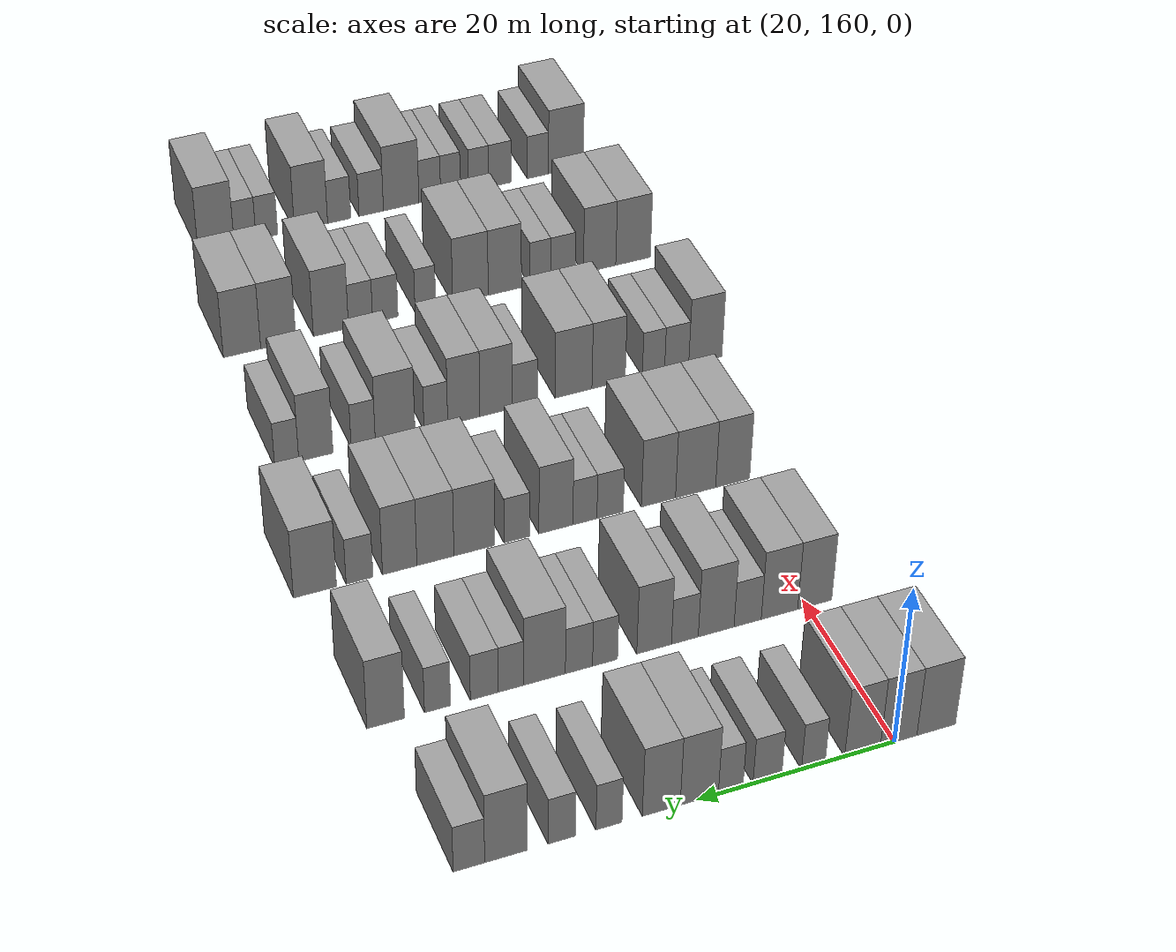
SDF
<sdf version="1.6">
 <world name="default">
  <model name="building_123">
   <static>1</static>
   <pose>25.0000 155.6396 0 0.000000 0.000000 0.000000</pose>
   <link name="link">
    <pose>0 0 4.50 0 0 0</pose>
    <collision name="collision"><geometry><box><size>10.0000 4.0307 9.0000</size></box></geometry></collision>
    <visual name="visual">
     <cast_shadows>0</cast_shadows>
     <geometry><box><size>10.0000 4.0307 9.0000</size></box></geometry>
     <material>
      <script>
       <uri>model://grey_wall/materials/scripts</uri>
       <uri>model://grey_wall/materials/textures</uri>
       <name>vrc/grey_wall</name>
      </script>
     </material>
    </visual>
   </link>
  </model>
  <model name="building_124">
   <static>1</static>
   <pose>25.0000 159.5429 0 0.000000 0.000000 0.000000</pose>
   <link name="link">
    <pose>0 0 4.50 0 0 0</pose>
    <collision name="collision"><geometry><box><size>10.0000 3.7759 9.0000</size></box></geometry></collision>
    <visual name="visual">
     <cast_shadows>0</cast_shadows>
     <geometry><box><size>10.0000 3.7759 9.0000</size></box></geometry>
     <material>
      <script>
       <uri>model://grey_wall/materials/scripts</uri>
       <uri>model://grey_wall/materials/textures</uri>
       <name>vrc/grey_wall</name>
      </script>
     </material>
    </visual>
   </link>
  </model>
  <model name="building_125">
   <static>1</static>
   <pose>25.0000 163.2745 0 0.000000 0.000000 0.000000</pose>
   <link name="link">
    <pose>0 0 4.50 0 0 0</pose>
    <collision name="collision"><geometry><box><size>10.0000 3.6872 9.0000</size></box></geometry></collision>
    <visual name="visual">
     <cast_shadows>0</cast_shadows>
     <geometry><box><size>10.0000 3.6872 9.0000</size></box></geometry>
     <material>
      <script>
       <uri>model://grey_wall/materials/scripts</uri>
       <uri>model://grey_wall/materials/textures</uri>
       <name>vrc/grey_wall</name>
      </script>
     </material>
    </visual>
   </link>
  </model>
  <model name="building_126">
   <static>1</static>
   <pose>25.0000 168.3255 0 0.000000 0.000000 0.000000</pose>
   <link name="link">
    <pose>0 0 3.00 0 0 0</pose>
    <collision name="collision"><geometry><box><size>10.0000 2.4147 6.0000</size></box></geometry></collision>
    <visual name="visual">
     <cast_shadows>0</cast_shadows>
     <geometry><box><size>10.0000 2.4147 6.0000</size></box></geometry>
     <material>
      <script>
       <uri>model://grey_wall/materials/scripts</uri>
       <uri>model://grey_wall/materials/textures</uri>
       <name>vrc/grey_wall</name>
      </script>
     </material>
    </visual>
   </link>
  </model>
  <model name="building_127">
   <static>1</static>
   <pose>25.0000 172.9852 0 0.000000 0.000000 0.000000</pose>
   <link name="link">
    <pose>0 0 3.00 0 0 0</pose>
    <collision name="collision"><geometry><box><size>10.0000 2.9047 6.0000</size></box></geometry></collision>
    <visual name="visual">
     <cast_shadows>0</cast_shadows>
     <geometry><box><size>10.0000 2.9047 6.0000</size></box></geometry>
     <material>
      <script>
       <uri>model://grey_wall/materials/scripts</uri>
       <uri>model://grey_wall/materials/textures</uri>
       <name>vrc/grey_wall</name>
      </script>
     </material>
    </visual>
   </link>
  </model>
  <model name="building_128">
   <static>1</static>
   <pose>25.0000 176.6720 0 0.000000 0.000000 0.000000</pose>
   <link name="link">
    <pose>0 0 3.00 0 0 0</pose>
    <collision name="collision"><geometry><box><size>10.0000 2.4690 6.0000</size></box></geometry></collision>
    <visual name="visual">
     <cast_shadows>0</cast_shadows>
     <geometry><box><size>10.0000 2.4690 6.0000</size></box></geometry>
     <material>
      <script>
       <uri>model://grey_wall/materials/scripts</uri>
       <uri>model://grey_wall/materials/textures</uri>
       <name>vrc/grey_wall</name>
      </script>
     </material>
    </visual>
   </link>
  </model>
  <model name="building_129">
   <static>1</static>
   <pose>25.0000 179.7991 0 0.000000 0.000000 0.000000</pose>
   <link name="link">
    <pose>0 0 4.50 0 0 0</pose>
    <collision name="collision"><geometry><box><size>10.0000 3.7854 9.0000</size></box></geometry></collision>
    <visual name="visual">
     <cast_shadows>0</cast_shadows>
     <geometry><box><size>10.0000 3.7854 9.0000</size></box></geometry>
     <material>
      <script>
       <uri>model://grey_wall/materials/scripts</uri>
       <uri>model://grey_wall/materials/textures</uri>
       <name>vrc/grey_wall</name>
      </script>
     </material>
    </visual>
   </link>
  </model>
  <model name="building_130">
   <static>1</static>
   <pose>25.0000 183.5631 0 0.000000 0.000000 0.000000</pose>
   <link name="link">
    <pose>0 0 4.50 0 0 0</pose>
    <collision name="collision"><geometry><box><size>10.0000 3.7427 9.0000</size></box></geometry></collision>
    <visual name="visual">
     <cast_shadows>0</cast_shadows>
     <geometry><box><size>10.0000 3.7427 9.0000</size></box></geometry>
     <material>
      <script>
       <uri>model://grey_wall/materials/scripts</uri>
       <uri>model://grey_wall/materials/textures</uri>
       <name>vrc/grey_wall</name>
      </script>
     </material>
    </visual>
   </link>
  </model>
  <model name="building_131">
   <static>1</static>
   <pose>25.0000 188.7011 0 0.000000 0.000000 0.000000</pose>
   <link name="link">
    <pose>0 0 3.00 0 0 0</pose>
    <collision name="collision"><geometry><box><size>10.0000 2.5333 6.0000</size></box></geometry></collision>
    <visual name="visual">
     <cast_shadows>0</cast_shadows>
     <geometry><box><size>10.0000 2.5333 6.0000</size></box></geometry>
     <material>
      <script>
       <uri>model://grey_wall/materials/scripts</uri>
       <uri>model://grey_wall/materials/textures</uri>
       <name>vrc/grey_wall</name>
      </script>
     </material>
    </visual>
   </link>
  </model>
  <model name="building_132">
   <static>1</static>
   <pose>25.0000 193.2896 0 0.000000 0.000000 0.000000</pose>
   <link name="link">
    <pose>0 0 3.00 0 0 0</pose>
    <collision name="collision"><geometry><box><size>10.0000 2.6437 6.0000</size></box></geometry></collision>
    <visual name="visual">
     <cast_shadows>0</cast_shadows>
     <geometry><box><size>10.0000 2.6437 6.0000</size></box></geometry>
     <material>
      <script>
       <uri>model://grey_wall/materials/scripts</uri>
       <uri>model://grey_wall/materials/textures</uri>
       <name>vrc/grey_wall</name>
      </script>
     </material>
    </visual>
   </link>
  </model>
  <model name="building_133">
   <static>1</static>
   <pose>25.0000 198.6399 0 0.000000 0.000000 0.000000</pose>
   <link name="link">
    <pose>0 0 4.50 0 0 0</pose>
    <collision name="collision"><geometry><box><size>10.0000 4.0569 9.0000</size></box></geometry></collision>
    <visual name="visual">
     <cast_shadows>0</cast_shadows>
     <geometry><box><size>10.0000 4.0569 9.0000</size></box></geometry>
     <material>
      <script>
       <uri>model://grey_wall/materials/scripts</uri>
       <uri>model://grey_wall/materials/textures</uri>
       <name>vrc/grey_wall</name>
      </script>
     </material>
    </visual>
   </link>
  </model>
  <model name="building_134">
   <static>1</static>
   <pose>25.0000 202.1631 0 0.000000 0.000000 0.000000</pose>
   <link name="link">
    <pose>0 0 3.00 0 0 0</pose>
    <collision name="collision"><geometry><box><size>10.0000 2.9894 6.0000</size></box></geometry></collision>
    <visual name="visual">
     <cast_shadows>0</cast_shadows>
     <geometry><box><size>10.0000 2.9894 6.0000</size></box></geometry>
     <material>
      <script>
       <uri>model://grey_wall/materials/scripts</uri>
       <uri>model://grey_wall/materials/textures</uri>
       <name>vrc/grey_wall</name>
      </script>
     </material>
    </visual>
   </link>
  </model>
  <model name="building_292">
   <static>1</static>
   <pose>44.0000 159.2048 0 0.000000 0.000000 0.000000</pose>
   <link name="link">
    <pose>0 0 4.50 0 0 0</pose>
    <collision name="collision"><geometry><box><size>10.0000 3.6809 9.0000</size></box></geometry></collision>
    <visual name="visual">
     <cast_shadows>0</cast_shadows>
     <geometry><box><size>10.0000 3.6809 9.0000</size></box></geometry>
     <material>
      <script>
       <uri>model://grey_wall/materials/scripts</uri>
       <uri>model://grey_wall/materials/textures</uri>
       <name>vrc/grey_wall</name>
      </script>
     </material>
    </visual>
   </link>
  </model>
  <model name="building_293">
   <static>1</static>
   <pose>44.0000 163.0004 0 0.000000 0.000000 0.000000</pose>
   <link name="link">
    <pose>0 0 4.50 0 0 0</pose>
    <collision name="collision"><geometry><box><size>10.0000 3.9104 9.0000</size></box></geometry></collision>
    <visual name="visual">
     <cast_shadows>0</cast_shadows>
     <geometry><box><size>10.0000 3.9104 9.0000</size></box></geometry>
     <material>
      <script>
       <uri>model://grey_wall/materials/scripts</uri>
       <uri>model://grey_wall/materials/textures</uri>
       <name>vrc/grey_wall</name>
      </script>
     </material>
    </visual>
   </link>
  </model>
  <model name="building_294">
   <static>1</static>
   <pose>44.0000 166.4081 0 0.000000 0.000000 0.000000</pose>
   <link name="link">
    <pose>0 0 3.00 0 0 0</pose>
    <collision name="collision"><geometry><box><size>10.0000 2.9050 6.0000</size></box></geometry></collision>
    <visual name="visual">
     <cast_shadows>0</cast_shadows>
     <geometry><box><size>10.0000 2.9050 6.0000</size></box></geometry>
     <material>
      <script>
       <uri>model://grey_wall/materials/scripts</uri>
       <uri>model://grey_wall/materials/textures</uri>
       <name>vrc/grey_wall</name>
      </script>
     </material>
    </visual>
   </link>
  </model>
  <model name="building_295">
   <static>1</static>
   <pose>44.0000 169.7570 0 0.000000 0.000000 0.000000</pose>
   <link name="link">
    <pose>0 0 4.50 0 0 0</pose>
    <collision name="collision"><geometry><box><size>10.0000 3.7927 9.0000</size></box></geometry></collision>
    <visual name="visual">
     <cast_shadows>0</cast_shadows>
     <geometry><box><size>10.0000 3.7927 9.0000</size></box></geometry>
     <material>
      <script>
       <uri>model://grey_wall/materials/scripts</uri>
       <uri>model://grey_wall/materials/textures</uri>
       <name>vrc/grey_wall</name>
      </script>
     </material>
    </visual>
   </link>
  </model>
  <model name="building_296">
   <static>1</static>
   <pose>44.0000 173.0677 0 0.000000 0.000000 0.000000</pose>
   <link name="link">
    <pose>0 0 3.00 0 0 0</pose>
    <collision name="collision"><geometry><box><size>10.0000 2.8288 6.0000</size></box></geometry></collision>
    <visual name="visual">
     <cast_shadows>0</cast_shadows>
     <geometry><box><size>10.0000 2.8288 6.0000</size></box></geometry>
     <material>
      <script>
       <uri>model://grey_wall/materials/scripts</uri>
       <uri>model://grey_wall/materials/textures</uri>
       <name>vrc/grey_wall</name>
      </script>
     </material>
    </visual>
   </link>
  </model>
  <model name="building_297">
   <static>1</static>
   <pose>44.0000 176.2962 0 0.000000 0.000000 0.000000</pose>
   <link name="link">
    <pose>0 0 4.50 0 0 0</pose>
    <collision name="collision"><geometry><box><size>10.0000 3.6283 9.0000</size></box></geometry></collision>
    <visual name="visual">
     <cast_shadows>0</cast_shadows>
     <geometry><box><size>10.0000 3.6283 9.0000</size></box></geometry>
     <material>
      <script>
       <uri>model://grey_wall/materials/scripts</uri>
       <uri>model://grey_wall/materials/textures</uri>
       <name>vrc/grey_wall</name>
      </script>
     </material>
    </visual>
   </link>
  </model>
  <model name="building_298">
   <static>1</static>
   <pose>44.0000 181.4017 0 0.000000 0.000000 0.000000</pose>
   <link name="link">
    <pose>0 0 3.00 0 0 0</pose>
    <collision name="collision"><geometry><box><size>10.0000 2.5827 6.0000</size></box></geometry></collision>
    <visual name="visual">
     <cast_shadows>0</cast_shadows>
     <geometry><box><size>10.0000 2.5827 6.0000</size></box></geometry>
     <material>
      <script>
       <uri>model://grey_wall/materials/scripts</uri>
       <uri>model://grey_wall/materials/textures</uri>
       <name>vrc/grey_wall</name>
      </script>
     </material>
    </visual>
   </link>
  </model>
  <model name="building_299">
   <static>1</static>
   <pose>44.0000 184.0940 0 0.000000 0.000000 0.000000</pose>
   <link name="link">
    <pose>0 0 3.00 0 0 0</pose>
    <collision name="collision"><geometry><box><size>10.0000 2.8018 6.0000</size></box></geometry></collision>
    <visual name="visual">
     <cast_shadows>0</cast_shadows>
     <geometry><box><size>10.0000 2.8018 6.0000</size></box></geometry>
     <material>
      <script>
       <uri>model://grey_wall/materials/scripts</uri>
       <uri>model://grey_wall/materials/textures</uri>
       <name>vrc/grey_wall</name>
      </script>
     </material>
    </visual>
   </link>
  </model>
  <model name="building_300">
   <static>1</static>
   <pose>44.0000 187.6282 0 0.000000 0.000000 0.000000</pose>
   <link name="link">
    <pose>0 0 4.50 0 0 0</pose>
    <collision name="collision"><geometry><box><size>10.0000 4.2666 9.0000</size></box></geometry></collision>
    <visual name="visual">
     <cast_shadows>0</cast_shadows>
     <geometry><box><size>10.0000 4.2666 9.0000</size></box></geometry>
     <material>
      <script>
       <uri>model://grey_wall/materials/scripts</uri>
       <uri>model://grey_wall/materials/textures</uri>
       <name>vrc/grey_wall</name>
      </script>
     </material>
    </visual>
   </link>
  </model>
  <model name="building_301">
   <static>1</static>
   <pose>44.0000 191.0411 0 0.000000 0.000000 0.000000</pose>
   <link name="link">
    <pose>0 0 3.00 0 0 0</pose>
    <collision name="collision"><geometry><box><size>10.0000 2.5593 6.0000</size></box></geometry></collision>
    <visual name="visual">
     <cast_shadows>0</cast_shadows>
     <geometry><box><size>10.0000 2.5593 6.0000</size></box></geometry>
     <material>
      <script>
       <uri>model://grey_wall/materials/scripts</uri>
       <uri>model://grey_wall/materials/textures</uri>
       <name>vrc/grey_wall</name>
      </script>
     </material>
    </visual>
   </link>
  </model>
  <model name="building_302">
   <static>1</static>
   <pose>44.0000 193.7359 0 0.000000 0.000000 0.000000</pose>
   <link name="link">
    <pose>0 0 3.00 0 0 0</pose>
    <collision name="collision"><geometry><box><size>10.0000 2.8303 6.0000</size></box></geometry></collision>
    <visual name="visual">
     <cast_shadows>0</cast_shadows>
     <geometry><box><size>10.0000 2.8303 6.0000</size></box></geometry>
     <material>
      <script>
       <uri>model://grey_wall/materials/scripts</uri>
       <uri>model://grey_wall/materials/textures</uri>
       <name>vrc/grey_wall</name>
      </script>
     </material>
    </visual>
   </link>
  </model>
  <model name="building_303">
   <static>1</static>
   <pose>44.0000 198.4488 0 0.000000 0.000000 0.000000</pose>
   <link name="link">
    <pose>0 0 3.00 0 0 0</pose>
    <collision name="collision"><geometry><box><size>10.0000 2.5955 6.0000</size></box></geometry></collision>
    <visual name="visual">
     <cast_shadows>0</cast_shadows>
     <geometry><box><size>10.0000 2.5955 6.0000</size></box></geometry>
     <material>
      <script>
       <uri>model://grey_wall/materials/scripts</uri>
       <uri>model://grey_wall/materials/textures</uri>
       <name>vrc/grey_wall</name>
      </script>
     </material>
    </visual>
   </link>
  </model>
  <model name="building_304">
   <static>1</static>
   <pose>44.0000 203.6031 0 0.000000 0.000000 0.000000</pose>
   <link name="link">
    <pose>0 0 4.50 0 0 0</pose>
    <collision name="collision"><geometry><box><size>10.0000 3.7130 9.0000</size></box></geometry></collision>
    <visual name="visual">
     <cast_shadows>0</cast_shadows>
     <geometry><box><size>10.0000 3.7130 9.0000</size></box></geometry>
     <material>
      <script>
       <uri>model://grey_wall/materials/scripts</uri>
       <uri>model://grey_wall/materials/textures</uri>
       <name>vrc/grey_wall</name>
      </script>
     </material>
    </visual>
   </link>
  </model>
  <model name="building_470">
   <static>1</static>
   <pose>63.0000 159.5436 0 0.000000 0.000000 0.000000</pose>
   <link name="link">
    <pose>0 0 4.50 0 0 0</pose>
    <collision name="collision"><geometry><box><size>10.0000 3.8157 9.0000</size></box></geometry></collision>
    <visual name="visual">
     <cast_shadows>0</cast_shadows>
     <geometry><box><size>10.0000 3.8157 9.0000</size></box></geometry>
     <material>
      <script>
       <uri>model://grey_wall/materials/scripts</uri>
       <uri>model://grey_wall/materials/textures</uri>
       <name>vrc/grey_wall</name>
      </script>
     </material>
    </visual>
   </link>
  </model>
  <model name="building_471">
   <static>1</static>
   <pose>63.0000 163.6958 0 0.000000 0.000000 0.000000</pose>
   <link name="link">
    <pose>0 0 4.50 0 0 0</pose>
    <collision name="collision"><geometry><box><size>10.0000 4.4886 9.0000</size></box></geometry></collision>
    <visual name="visual">
     <cast_shadows>0</cast_shadows>
     <geometry><box><size>10.0000 4.4886 9.0000</size></box></geometry>
     <material>
      <script>
       <uri>model://grey_wall/materials/scripts</uri>
       <uri>model://grey_wall/materials/textures</uri>
       <name>vrc/grey_wall</name>
      </script>
     </material>
    </visual>
   </link>
  </model>
  <model name="building_472">
   <static>1</static>
   <pose>63.0000 167.8338 0 0.000000 0.000000 0.000000</pose>
   <link name="link">
    <pose>0 0 4.50 0 0 0</pose>
    <collision name="collision"><geometry><box><size>10.0000 3.7874 9.0000</size></box></geometry></collision>
    <visual name="visual">
     <cast_shadows>0</cast_shadows>
     <geometry><box><size>10.0000 3.7874 9.0000</size></box></geometry>
     <material>
      <script>
       <uri>model://grey_wall/materials/scripts</uri>
       <uri>model://grey_wall/materials/textures</uri>
       <name>vrc/grey_wall</name>
      </script>
     </material>
    </visual>
   </link>
  </model>
  <model name="building_473">
   <static>1</static>
   <pose>63.0000 173.1714 0 0.000000 0.000000 0.000000</pose>
   <link name="link">
    <pose>0 0 3.00 0 0 0</pose>
    <collision name="collision"><geometry><box><size>10.0000 2.8876 6.0000</size></box></geometry></collision>
    <visual name="visual">
     <cast_shadows>0</cast_shadows>
     <geometry><box><size>10.0000 2.8876 6.0000</size></box></geometry>
     <material>
      <script>
       <uri>model://grey_wall/materials/scripts</uri>
       <uri>model://grey_wall/materials/textures</uri>
       <name>vrc/grey_wall</name>
      </script>
     </material>
    </visual>
   </link>
  </model>
  <model name="building_474">
   <static>1</static>
   <pose>63.0000 175.9283 0 0.000000 0.000000 0.000000</pose>
   <link name="link">
    <pose>0 0 3.00 0 0 0</pose>
    <collision name="collision"><geometry><box><size>10.0000 2.6262 6.0000</size></box></geometry></collision>
    <visual name="visual">
     <cast_shadows>0</cast_shadows>
     <geometry><box><size>10.0000 2.6262 6.0000</size></box></geometry>
     <material>
      <script>
       <uri>model://grey_wall/materials/scripts</uri>
       <uri>model://grey_wall/materials/textures</uri>
       <name>vrc/grey_wall</name>
      </script>
     </material>
    </visual>
   </link>
  </model>
  <model name="building_475">
   <static>1</static>
   <pose>63.0000 179.0829 0 0.000000 0.000000 0.000000</pose>
   <link name="link">
    <pose>0 0 4.50 0 0 0</pose>
    <collision name="collision"><geometry><box><size>10.0000 3.6831 9.0000</size></box></geometry></collision>
    <visual name="visual">
     <cast_shadows>0</cast_shadows>
     <geometry><box><size>10.0000 3.6831 9.0000</size></box></geometry>
     <material>
      <script>
       <uri>model://grey_wall/materials/scripts</uri>
       <uri>model://grey_wall/materials/textures</uri>
       <name>vrc/grey_wall</name>
      </script>
     </material>
    </visual>
   </link>
  </model>
  <model name="building_476">
   <static>1</static>
   <pose>63.0000 183.3025 0 0.000000 0.000000 0.000000</pose>
   <link name="link">
    <pose>0 0 3.00 0 0 0</pose>
    <collision name="collision"><geometry><box><size>10.0000 2.7562 6.0000</size></box></geometry></collision>
    <visual name="visual">
     <cast_shadows>0</cast_shadows>
     <geometry><box><size>10.0000 2.7562 6.0000</size></box></geometry>
     <material>
      <script>
       <uri>model://grey_wall/materials/scripts</uri>
       <uri>model://grey_wall/materials/textures</uri>
       <name>vrc/grey_wall</name>
      </script>
     </material>
    </visual>
   </link>
  </model>
  <model name="building_477">
   <static>1</static>
   <pose>63.0000 187.8508 0 0.000000 0.000000 0.000000</pose>
   <link name="link">
    <pose>0 0 4.50 0 0 0</pose>
    <collision name="collision"><geometry><box><size>10.0000 4.3405 9.0000</size></box></geometry></collision>
    <visual name="visual">
     <cast_shadows>0</cast_shadows>
     <geometry><box><size>10.0000 4.3405 9.0000</size></box></geometry>
     <material>
      <script>
       <uri>model://grey_wall/materials/scripts</uri>
       <uri>model://grey_wall/materials/textures</uri>
       <name>vrc/grey_wall</name>
      </script>
     </material>
    </visual>
   </link>
  </model>
  <model name="building_478">
   <static>1</static>
   <pose>63.0000 191.9805 0 0.000000 0.000000 0.000000</pose>
   <link name="link">
    <pose>0 0 4.50 0 0 0</pose>
    <collision name="collision"><geometry><box><size>10.0000 3.9189 9.0000</size></box></geometry></collision>
    <visual name="visual">
     <cast_shadows>0</cast_shadows>
     <geometry><box><size>10.0000 3.9189 9.0000</size></box></geometry>
     <material>
      <script>
       <uri>model://grey_wall/materials/scripts</uri>
       <uri>model://grey_wall/materials/textures</uri>
       <name>vrc/grey_wall</name>
      </script>
     </material>
    </visual>
   </link>
  </model>
  <model name="building_479">
   <static>1</static>
   <pose>63.0000 195.7481 0 0.000000 0.000000 0.000000</pose>
   <link name="link">
    <pose>0 0 4.50 0 0 0</pose>
    <collision name="collision"><geometry><box><size>10.0000 3.6163 9.0000</size></box></geometry></collision>
    <visual name="visual">
     <cast_shadows>0</cast_shadows>
     <geometry><box><size>10.0000 3.6163 9.0000</size></box></geometry>
     <material>
      <script>
       <uri>model://grey_wall/materials/scripts</uri>
       <uri>model://grey_wall/materials/textures</uri>
       <name>vrc/grey_wall</name>
      </script>
     </material>
    </visual>
   </link>
  </model>
  <model name="building_480">
   <static>1</static>
   <pose>63.0000 199.9565 0 0.000000 0.000000 0.000000</pose>
   <link name="link">
    <pose>0 0 3.00 0 0 0</pose>
    <collision name="collision"><geometry><box><size>10.0000 2.8006 6.0000</size></box></geometry></collision>
    <visual name="visual">
     <cast_shadows>0</cast_shadows>
     <geometry><box><size>10.0000 2.8006 6.0000</size></box></geometry>
     <material>
      <script>
       <uri>model://grey_wall/materials/scripts</uri>
       <uri>model://grey_wall/materials/textures</uri>
       <name>vrc/grey_wall</name>
      </script>
     </material>
    </visual>
   </link>
  </model>
  <model name="building_481">
   <static>1</static>
   <pose>63.0000 204.5817 0 0.000000 0.000000 0.000000</pose>
   <link name="link">
    <pose>0 0 4.50 0 0 0</pose>
    <collision name="collision"><geometry><box><size>10.0000 4.4498 9.0000</size></box></geometry></collision>
    <visual name="visual">
     <cast_shadows>0</cast_shadows>
     <geometry><box><size>10.0000 4.4498 9.0000</size></box></geometry>
     <material>
      <script>
       <uri>model://grey_wall/materials/scripts</uri>
       <uri>model://grey_wall/materials/textures</uri>
       <name>vrc/grey_wall</name>
      </script>
     </material>
    </visual>
   </link>
  </model>
  <model name="building_653">
   <static>1</static>
   <pose>82.0000 154.3159 0 0.000000 0.000000 0.000000</pose>
   <link name="link">
    <pose>0 0 4.50 0 0 0</pose>
    <collision name="collision"><geometry><box><size>10.0000 3.9167 9.0000</size></box></geometry></collision>
    <visual name="visual">
     <cast_shadows>0</cast_shadows>
     <geometry><box><size>10.0000 3.9167 9.0000</size></box></geometry>
     <material>
      <script>
       <uri>model://grey_wall/materials/scripts</uri>
       <uri>model://grey_wall/materials/textures</uri>
       <name>vrc/grey_wall</name>
      </script>
     </material>
    </visual>
   </link>
  </model>
  <model name="building_654">
   <static>1</static>
   <pose>82.0000 157.6929 0 0.000000 0.000000 0.000000</pose>
   <link name="link">
    <pose>0 0 3.00 0 0 0</pose>
    <collision name="collision"><geometry><box><size>10.0000 2.8373 6.0000</size></box></geometry></collision>
    <visual name="visual">
     <cast_shadows>0</cast_shadows>
     <geometry><box><size>10.0000 2.8373 6.0000</size></box></geometry>
     <material>
      <script>
       <uri>model://grey_wall/materials/scripts</uri>
       <uri>model://grey_wall/materials/textures</uri>
       <name>vrc/grey_wall</name>
      </script>
     </material>
    </visual>
   </link>
  </model>
  <model name="building_655">
   <static>1</static>
   <pose>82.0000 160.4118 0 0.000000 0.000000 0.000000</pose>
   <link name="link">
    <pose>0 0 3.00 0 0 0</pose>
    <collision name="collision"><geometry><box><size>10.0000 2.6006 6.0000</size></box></geometry></collision>
    <visual name="visual">
     <cast_shadows>0</cast_shadows>
     <geometry><box><size>10.0000 2.6006 6.0000</size></box></geometry>
     <material>
      <script>
       <uri>model://grey_wall/materials/scripts</uri>
       <uri>model://grey_wall/materials/textures</uri>
       <name>vrc/grey_wall</name>
      </script>
     </material>
    </visual>
   </link>
  </model>
  <model name="building_656">
   <static>1</static>
   <pose>82.0000 165.6346 0 0.000000 0.000000 0.000000</pose>
   <link name="link">
    <pose>0 0 4.50 0 0 0</pose>
    <collision name="collision"><geometry><box><size>10.0000 3.8449 9.0000</size></box></geometry></collision>
    <visual name="visual">
     <cast_shadows>0</cast_shadows>
     <geometry><box><size>10.0000 3.8449 9.0000</size></box></geometry>
     <material>
      <script>
       <uri>model://grey_wall/materials/scripts</uri>
       <uri>model://grey_wall/materials/textures</uri>
       <name>vrc/grey_wall</name>
      </script>
     </material>
    </visual>
   </link>
  </model>
  <model name="building_657">
   <static>1</static>
   <pose>82.0000 169.6800 0 0.000000 0.000000 0.000000</pose>
   <link name="link">
    <pose>0 0 4.50 0 0 0</pose>
    <collision name="collision"><geometry><box><size>10.0000 4.2460 9.0000</size></box></geometry></collision>
    <visual name="visual">
     <cast_shadows>0</cast_shadows>
     <geometry><box><size>10.0000 4.2460 9.0000</size></box></geometry>
     <material>
      <script>
       <uri>model://grey_wall/materials/scripts</uri>
       <uri>model://grey_wall/materials/textures</uri>
       <name>vrc/grey_wall</name>
      </script>
     </material>
    </visual>
   </link>
  </model>
  <model name="building_658">
   <static>1</static>
   <pose>82.0000 175.2300 0 0.000000 0.000000 0.000000</pose>
   <link name="link">
    <pose>0 0 3.00 0 0 0</pose>
    <collision name="collision"><geometry><box><size>10.0000 2.8538 6.0000</size></box></geometry></collision>
    <visual name="visual">
     <cast_shadows>0</cast_shadows>
     <geometry><box><size>10.0000 2.8538 6.0000</size></box></geometry>
     <material>
      <script>
       <uri>model://grey_wall/materials/scripts</uri>
       <uri>model://grey_wall/materials/textures</uri>
       <name>vrc/grey_wall</name>
      </script>
     </material>
    </visual>
   </link>
  </model>
  <model name="building_659">
   <static>1</static>
   <pose>82.0000 178.4962 0 0.000000 0.000000 0.000000</pose>
   <link name="link">
    <pose>0 0 4.50 0 0 0</pose>
    <collision name="collision"><geometry><box><size>10.0000 3.6787 9.0000</size></box></geometry></collision>
    <visual name="visual">
     <cast_shadows>0</cast_shadows>
     <geometry><box><size>10.0000 3.6787 9.0000</size></box></geometry>
     <material>
      <script>
       <uri>model://grey_wall/materials/scripts</uri>
       <uri>model://grey_wall/materials/textures</uri>
       <name>vrc/grey_wall</name>
      </script>
     </material>
    </visual>
   </link>
  </model>
  <model name="building_660">
   <static>1</static>
   <pose>82.0000 182.1431 0 0.000000 0.000000 0.000000</pose>
   <link name="link">
    <pose>0 0 4.50 0 0 0</pose>
    <collision name="collision"><geometry><box><size>10.0000 3.6151 9.0000</size></box></geometry></collision>
    <visual name="visual">
     <cast_shadows>0</cast_shadows>
     <geometry><box><size>10.0000 3.6151 9.0000</size></box></geometry>
     <material>
      <script>
       <uri>model://grey_wall/materials/scripts</uri>
       <uri>model://grey_wall/materials/textures</uri>
       <name>vrc/grey_wall</name>
      </script>
     </material>
    </visual>
   </link>
  </model>
  <model name="building_661">
   <static>1</static>
   <pose>82.0000 185.2763 0 0.000000 0.000000 0.000000</pose>
   <link name="link">
    <pose>0 0 3.00 0 0 0</pose>
    <collision name="collision"><geometry><box><size>10.0000 2.6513 6.0000</size></box></geometry></collision>
    <visual name="visual">
     <cast_shadows>0</cast_shadows>
     <geometry><box><size>10.0000 2.6513 6.0000</size></box></geometry>
     <material>
      <script>
       <uri>model://grey_wall/materials/scripts</uri>
       <uri>model://grey_wall/materials/textures</uri>
       <name>vrc/grey_wall</name>
      </script>
     </material>
    </visual>
   </link>
  </model>
  <model name="building_662">
   <static>1</static>
   <pose>82.0000 189.7979 0 0.000000 0.000000 0.000000</pose>
   <link name="link">
    <pose>0 0 4.50 0 0 0</pose>
    <collision name="collision"><geometry><box><size>10.0000 4.3919 9.0000</size></box></geometry></collision>
    <visual name="visual">
     <cast_shadows>0</cast_shadows>
     <geometry><box><size>10.0000 4.3919 9.0000</size></box></geometry>
     <material>
      <script>
       <uri>model://grey_wall/materials/scripts</uri>
       <uri>model://grey_wall/materials/textures</uri>
       <name>vrc/grey_wall</name>
      </script>
     </material>
    </visual>
   </link>
  </model>
  <model name="building_663">
   <static>1</static>
   <pose>82.0000 193.3204 0 0.000000 0.000000 0.000000</pose>
   <link name="link">
    <pose>0 0 3.00 0 0 0</pose>
    <collision name="collision"><geometry><box><size>10.0000 2.6532 6.0000</size></box></geometry></collision>
    <visual name="visual">
     <cast_shadows>0</cast_shadows>
     <geometry><box><size>10.0000 2.6532 6.0000</size></box></geometry>
     <material>
      <script>
       <uri>model://grey_wall/materials/scripts</uri>
       <uri>model://grey_wall/materials/textures</uri>
       <name>vrc/grey_wall</name>
      </script>
     </material>
    </visual>
   </link>
  </model>
  <model name="building_664">
   <static>1</static>
   <pose>82.0000 198.5083 0 0.000000 0.000000 0.000000</pose>
   <link name="link">
    <pose>0 0 4.50 0 0 0</pose>
    <collision name="collision"><geometry><box><size>10.0000 3.7227 9.0000</size></box></geometry></collision>
    <visual name="visual">
     <cast_shadows>0</cast_shadows>
     <geometry><box><size>10.0000 3.7227 9.0000</size></box></geometry>
     <material>
      <script>
       <uri>model://grey_wall/materials/scripts</uri>
       <uri>model://grey_wall/materials/textures</uri>
       <name>vrc/grey_wall</name>
      </script>
     </material>
    </visual>
   </link>
  </model>
  <model name="building_665">
   <static>1</static>
   <pose>82.0000 201.6762 0 0.000000 0.000000 0.000000</pose>
   <link name="link">
    <pose>0 0 3.00 0 0 0</pose>
    <collision name="collision"><geometry><box><size>10.0000 2.6131 6.0000</size></box></geometry></collision>
    <visual name="visual">
     <cast_shadows>0</cast_shadows>
     <geometry><box><size>10.0000 2.6131 6.0000</size></box></geometry>
     <material>
      <script>
       <uri>model://grey_wall/materials/scripts</uri>
       <uri>model://grey_wall/materials/textures</uri>
       <name>vrc/grey_wall</name>
      </script>
     </material>
    </visual>
   </link>
  </model>
  <model name="building_831">
   <static>1</static>
   <pose>101.0000 154.9460 0 0.000000 0.000000 0.000000</pose>
   <link name="link">
    <pose>0 0 4.50 0 0 0</pose>
    <collision name="collision"><geometry><box><size>10.0000 4.2267 9.0000</size></box></geometry></collision>
    <visual name="visual">
     <cast_shadows>0</cast_shadows>
     <geometry><box><size>10.0000 4.2267 9.0000</size></box></geometry>
     <material>
      <script>
       <uri>model://grey_wall/materials/scripts</uri>
       <uri>model://grey_wall/materials/textures</uri>
       <name>vrc/grey_wall</name>
      </script>
     </material>
    </visual>
   </link>
  </model>
  <model name="building_832">
   <static>1</static>
   <pose>101.0000 159.0292 0 0.000000 0.000000 0.000000</pose>
   <link name="link">
    <pose>0 0 4.50 0 0 0</pose>
    <collision name="collision"><geometry><box><size>10.0000 3.9398 9.0000</size></box></geometry></collision>
    <visual name="visual">
     <cast_shadows>0</cast_shadows>
     <geometry><box><size>10.0000 3.9398 9.0000</size></box></geometry>
     <material>
      <script>
       <uri>model://grey_wall/materials/scripts</uri>
       <uri>model://grey_wall/materials/textures</uri>
       <name>vrc/grey_wall</name>
      </script>
     </material>
    </visual>
   </link>
  </model>
  <model name="building_833">
   <static>1</static>
   <pose>101.0000 163.4753 0 0.000000 0.000000 0.000000</pose>
   <link name="link">
    <pose>0 0 3.00 0 0 0</pose>
    <collision name="collision"><geometry><box><size>10.0000 2.9524 6.0000</size></box></geometry></collision>
    <visual name="visual">
     <cast_shadows>0</cast_shadows>
     <geometry><box><size>10.0000 2.9524 6.0000</size></box></geometry>
     <material>
      <script>
       <uri>model://grey_wall/materials/scripts</uri>
       <uri>model://grey_wall/materials/textures</uri>
       <name>vrc/grey_wall</name>
      </script>
     </material>
    </visual>
   </link>
  </model>
  <model name="building_834">
   <static>1</static>
   <pose>101.0000 166.2065 0 0.000000 0.000000 0.000000</pose>
   <link name="link">
    <pose>0 0 3.00 0 0 0</pose>
    <collision name="collision"><geometry><box><size>10.0000 2.5101 6.0000</size></box></geometry></collision>
    <visual name="visual">
     <cast_shadows>0</cast_shadows>
     <geometry><box><size>10.0000 2.5101 6.0000</size></box></geometry>
     <material>
      <script>
       <uri>model://grey_wall/materials/scripts</uri>
       <uri>model://grey_wall/materials/textures</uri>
       <name>vrc/grey_wall</name>
      </script>
     </material>
    </visual>
   </link>
  </model>
  <model name="building_835">
   <static>1</static>
   <pose>101.0000 170.4415 0 0.000000 0.000000 0.000000</pose>
   <link name="link">
    <pose>0 0 4.50 0 0 0</pose>
    <collision name="collision"><geometry><box><size>10.0000 3.9598 9.0000</size></box></geometry></collision>
    <visual name="visual">
     <cast_shadows>0</cast_shadows>
     <geometry><box><size>10.0000 3.9598 9.0000</size></box></geometry>
     <material>
      <script>
       <uri>model://grey_wall/materials/scripts</uri>
       <uri>model://grey_wall/materials/textures</uri>
       <name>vrc/grey_wall</name>
      </script>
     </material>
    </visual>
   </link>
  </model>
  <model name="building_836">
   <static>1</static>
   <pose>101.0000 174.5262 0 0.000000 0.000000 0.000000</pose>
   <link name="link">
    <pose>0 0 4.50 0 0 0</pose>
    <collision name="collision"><geometry><box><size>10.0000 4.2097 9.0000</size></box></geometry></collision>
    <visual name="visual">
     <cast_shadows>0</cast_shadows>
     <geometry><box><size>10.0000 4.2097 9.0000</size></box></geometry>
     <material>
      <script>
       <uri>model://grey_wall/materials/scripts</uri>
       <uri>model://grey_wall/materials/textures</uri>
       <name>vrc/grey_wall</name>
      </script>
     </material>
    </visual>
   </link>
  </model>
  <model name="building_837">
   <static>1</static>
   <pose>101.0000 179.8396 0 0.000000 0.000000 0.000000</pose>
   <link name="link">
    <pose>0 0 3.00 0 0 0</pose>
    <collision name="collision"><geometry><box><size>10.0000 2.4171 6.0000</size></box></geometry></collision>
    <visual name="visual">
     <cast_shadows>0</cast_shadows>
     <geometry><box><size>10.0000 2.4171 6.0000</size></box></geometry>
     <material>
      <script>
       <uri>model://grey_wall/materials/scripts</uri>
       <uri>model://grey_wall/materials/textures</uri>
       <name>vrc/grey_wall</name>
      </script>
     </material>
    </visual>
   </link>
  </model>
  <model name="building_838">
   <static>1</static>
   <pose>101.0000 184.5158 0 0.000000 0.000000 0.000000</pose>
   <link name="link">
    <pose>0 0 3.00 0 0 0</pose>
    <collision name="collision"><geometry><box><size>10.0000 2.9354 6.0000</size></box></geometry></collision>
    <visual name="visual">
     <cast_shadows>0</cast_shadows>
     <geometry><box><size>10.0000 2.9354 6.0000</size></box></geometry>
     <material>
      <script>
       <uri>model://grey_wall/materials/scripts</uri>
       <uri>model://grey_wall/materials/textures</uri>
       <name>vrc/grey_wall</name>
      </script>
     </material>
    </visual>
   </link>
  </model>
  <model name="building_839">
   <static>1</static>
   <pose>101.0000 187.3850 0 0.000000 0.000000 0.000000</pose>
   <link name="link">
    <pose>0 0 3.00 0 0 0</pose>
    <collision name="collision"><geometry><box><size>10.0000 2.8029 6.0000</size></box></geometry></collision>
    <visual name="visual">
     <cast_shadows>0</cast_shadows>
     <geometry><box><size>10.0000 2.8029 6.0000</size></box></geometry>
     <material>
      <script>
       <uri>model://grey_wall/materials/scripts</uri>
       <uri>model://grey_wall/materials/textures</uri>
       <name>vrc/grey_wall</name>
      </script>
     </material>
    </visual>
   </link>
  </model>
  <model name="building_840">
   <static>1</static>
   <pose>101.0000 190.8097 0 0.000000 0.000000 0.000000</pose>
   <link name="link">
    <pose>0 0 4.50 0 0 0</pose>
    <collision name="collision"><geometry><box><size>10.0000 4.0464 9.0000</size></box></geometry></collision>
    <visual name="visual">
     <cast_shadows>0</cast_shadows>
     <geometry><box><size>10.0000 4.0464 9.0000</size></box></geometry>
     <material>
      <script>
       <uri>model://grey_wall/materials/scripts</uri>
       <uri>model://grey_wall/materials/textures</uri>
       <name>vrc/grey_wall</name>
      </script>
     </material>
    </visual>
   </link>
  </model>
  <model name="building_841">
   <static>1</static>
   <pose>101.0000 196.8350 0 0.000000 0.000000 0.000000</pose>
   <link name="link">
    <pose>0 0 4.50 0 0 0</pose>
    <collision name="collision"><geometry><box><size>10.0000 4.0042 9.0000</size></box></geometry></collision>
    <visual name="visual">
     <cast_shadows>0</cast_shadows>
     <geometry><box><size>10.0000 4.0042 9.0000</size></box></geometry>
     <material>
      <script>
       <uri>model://grey_wall/materials/scripts</uri>
       <uri>model://grey_wall/materials/textures</uri>
       <name>vrc/grey_wall</name>
      </script>
     </material>
    </visual>
   </link>
  </model>
  <model name="building_842">
   <static>1</static>
   <pose>101.0000 200.9502 0 0.000000 0.000000 0.000000</pose>
   <link name="link">
    <pose>0 0 4.50 0 0 0</pose>
    <collision name="collision"><geometry><box><size>10.0000 4.2261 9.0000</size></box></geometry></collision>
    <visual name="visual">
     <cast_shadows>0</cast_shadows>
     <geometry><box><size>10.0000 4.2261 9.0000</size></box></geometry>
     <material>
      <script>
       <uri>model://grey_wall/materials/scripts</uri>
       <uri>model://grey_wall/materials/textures</uri>
       <name>vrc/grey_wall</name>
      </script>
     </material>
    </visual>
   </link>
  </model>
  <model name="building_1005">
   <static>1</static>
   <pose>120.0000 155.6786 0 0.000000 0.000000 0.000000</pose>
   <link name="link">
    <pose>0 0 4.50 0 0 0</pose>
    <collision name="collision"><geometry><box><size>10.0000 4.4173 9.0000</size></box></geometry></collision>
    <visual name="visual">
     <cast_shadows>0</cast_shadows>
     <geometry><box><size>10.0000 4.4173 9.0000</size></box></geometry>
     <material>
      <script>
       <uri>model://grey_wall/materials/scripts</uri>
       <uri>model://grey_wall/materials/textures</uri>
       <name>vrc/grey_wall</name>
      </script>
     </material>
    </visual>
   </link>
  </model>
  <model name="building_1006">
   <static>1</static>
   <pose>120.0000 159.2111 0 0.000000 0.000000 0.000000</pose>
   <link name="link">
    <pose>0 0 3.00 0 0 0</pose>
    <collision name="collision"><geometry><box><size>10.0000 2.6476 6.0000</size></box></geometry></collision>
    <visual name="visual">
     <cast_shadows>0</cast_shadows>
     <geometry><box><size>10.0000 2.6476 6.0000</size></box></geometry>
     <material>
      <script>
       <uri>model://grey_wall/materials/scripts</uri>
       <uri>model://grey_wall/materials/textures</uri>
       <name>vrc/grey_wall</name>
      </script>
     </material>
    </visual>
   </link>
  </model>
  <model name="building_1007">
   <static>1</static>
   <pose>120.0000 163.9591 0 0.000000 0.000000 0.000000</pose>
   <link name="link">
    <pose>0 0 3.00 0 0 0</pose>
    <collision name="collision"><geometry><box><size>10.0000 2.8484 6.0000</size></box></geometry></collision>
    <visual name="visual">
     <cast_shadows>0</cast_shadows>
     <geometry><box><size>10.0000 2.8484 6.0000</size></box></geometry>
     <material>
      <script>
       <uri>model://grey_wall/materials/scripts</uri>
       <uri>model://grey_wall/materials/textures</uri>
       <name>vrc/grey_wall</name>
      </script>
     </material>
    </visual>
   </link>
  </model>
  <model name="building_1008">
   <static>1</static>
   <pose>120.0000 166.6475 0 0.000000 0.000000 0.000000</pose>
   <link name="link">
    <pose>0 0 3.00 0 0 0</pose>
    <collision name="collision"><geometry><box><size>10.0000 2.5283 6.0000</size></box></geometry></collision>
    <visual name="visual">
     <cast_shadows>0</cast_shadows>
     <geometry><box><size>10.0000 2.5283 6.0000</size></box></geometry>
     <material>
      <script>
       <uri>model://grey_wall/materials/scripts</uri>
       <uri>model://grey_wall/materials/textures</uri>
       <name>vrc/grey_wall</name>
      </script>
     </material>
    </visual>
   </link>
  </model>
  <model name="building_1009">
   <static>1</static>
   <pose>120.0000 170.1293 0 0.000000 0.000000 0.000000</pose>
   <link name="link">
    <pose>0 0 3.00 0 0 0</pose>
    <collision name="collision"><geometry><box><size>10.0000 2.4352 6.0000</size></box></geometry></collision>
    <visual name="visual">
     <cast_shadows>0</cast_shadows>
     <geometry><box><size>10.0000 2.4352 6.0000</size></box></geometry>
     <material>
      <script>
       <uri>model://grey_wall/materials/scripts</uri>
       <uri>model://grey_wall/materials/textures</uri>
       <name>vrc/grey_wall</name>
      </script>
     </material>
    </visual>
   </link>
  </model>
  <model name="building_1010">
   <static>1</static>
   <pose>120.0000 172.6848 0 0.000000 0.000000 0.000000</pose>
   <link name="link">
    <pose>0 0 3.00 0 0 0</pose>
    <collision name="collision"><geometry><box><size>10.0000 2.6758 6.0000</size></box></geometry></collision>
    <visual name="visual">
     <cast_shadows>0</cast_shadows>
     <geometry><box><size>10.0000 2.6758 6.0000</size></box></geometry>
     <material>
      <script>
       <uri>model://grey_wall/materials/scripts</uri>
       <uri>model://grey_wall/materials/textures</uri>
       <name>vrc/grey_wall</name>
      </script>
     </material>
    </visual>
   </link>
  </model>
  <model name="building_1011">
   <static>1</static>
   <pose>120.0000 176.2009 0 0.000000 0.000000 0.000000</pose>
   <link name="link">
    <pose>0 0 4.50 0 0 0</pose>
    <collision name="collision"><geometry><box><size>10.0000 4.3563 9.0000</size></box></geometry></collision>
    <visual name="visual">
     <cast_shadows>0</cast_shadows>
     <geometry><box><size>10.0000 4.3563 9.0000</size></box></geometry>
     <material>
      <script>
       <uri>model://grey_wall/materials/scripts</uri>
       <uri>model://grey_wall/materials/textures</uri>
       <name>vrc/grey_wall</name>
      </script>
     </material>
    </visual>
   </link>
  </model>
  <model name="building_1012">
   <static>1</static>
   <pose>120.0000 179.8647 0 0.000000 0.000000 0.000000</pose>
   <link name="link">
    <pose>0 0 3.00 0 0 0</pose>
    <collision name="collision"><geometry><box><size>10.0000 2.9712 6.0000</size></box></geometry></collision>
    <visual name="visual">
     <cast_shadows>0</cast_shadows>
     <geometry><box><size>10.0000 2.9712 6.0000</size></box></geometry>
     <material>
      <script>
       <uri>model://grey_wall/materials/scripts</uri>
       <uri>model://grey_wall/materials/textures</uri>
       <name>vrc/grey_wall</name>
      </script>
     </material>
    </visual>
   </link>
  </model>
  <model name="building_1013">
   <static>1</static>
   <pose>120.0000 183.7533 0 0.000000 0.000000 0.000000</pose>
   <link name="link">
    <pose>0 0 3.00 0 0 0</pose>
    <collision name="collision"><geometry><box><size>10.0000 2.8061 6.0000</size></box></geometry></collision>
    <visual name="visual">
     <cast_shadows>0</cast_shadows>
     <geometry><box><size>10.0000 2.8061 6.0000</size></box></geometry>
     <material>
      <script>
       <uri>model://grey_wall/materials/scripts</uri>
       <uri>model://grey_wall/materials/textures</uri>
       <name>vrc/grey_wall</name>
      </script>
     </material>
    </visual>
   </link>
  </model>
  <model name="building_1014">
   <static>1</static>
   <pose>120.0000 187.1519 0 0.000000 0.000000 0.000000</pose>
   <link name="link">
    <pose>0 0 4.50 0 0 0</pose>
    <collision name="collision"><geometry><box><size>10.0000 3.9910 9.0000</size></box></geometry></collision>
    <visual name="visual">
     <cast_shadows>0</cast_shadows>
     <geometry><box><size>10.0000 3.9910 9.0000</size></box></geometry>
     <material>
      <script>
       <uri>model://grey_wall/materials/scripts</uri>
       <uri>model://grey_wall/materials/textures</uri>
       <name>vrc/grey_wall</name>
      </script>
     </material>
    </visual>
   </link>
  </model>
  <model name="building_1015">
   <static>1</static>
   <pose>120.0000 192.4397 0 0.000000 0.000000 0.000000</pose>
   <link name="link">
    <pose>0 0 3.00 0 0 0</pose>
    <collision name="collision"><geometry><box><size>10.0000 2.5846 6.0000</size></box></geometry></collision>
    <visual name="visual">
     <cast_shadows>0</cast_shadows>
     <geometry><box><size>10.0000 2.5846 6.0000</size></box></geometry>
     <material>
      <script>
       <uri>model://grey_wall/materials/scripts</uri>
       <uri>model://grey_wall/materials/textures</uri>
       <name>vrc/grey_wall</name>
      </script>
     </material>
    </visual>
   </link>
  </model>
  <model name="building_1016">
   <static>1</static>
   <pose>120.0000 195.0320 0 0.000000 0.000000 0.000000</pose>
   <link name="link">
    <pose>0 0 3.00 0 0 0</pose>
    <collision name="collision"><geometry><box><size>10.0000 2.5999 6.0000</size></box></geometry></collision>
    <visual name="visual">
     <cast_shadows>0</cast_shadows>
     <geometry><box><size>10.0000 2.5999 6.0000</size></box></geometry>
     <material>
      <script>
       <uri>model://grey_wall/materials/scripts</uri>
       <uri>model://grey_wall/materials/textures</uri>
       <name>vrc/grey_wall</name>
      </script>
     </material>
    </visual>
   </link>
  </model>
  <model name="building_1017">
   <static>1</static>
   <pose>120.0000 198.4590 0 0.000000 0.000000 0.000000</pose>
   <link name="link">
    <pose>0 0 4.50 0 0 0</pose>
    <collision name="collision"><geometry><box><size>10.0000 4.2543 9.0000</size></box></geometry></collision>
    <visual name="visual">
     <cast_shadows>0</cast_shadows>
     <geometry><box><size>10.0000 4.2543 9.0000</size></box></geometry>
     <material>
      <script>
       <uri>model://grey_wall/materials/scripts</uri>
       <uri>model://grey_wall/materials/textures</uri>
       <name>vrc/grey_wall</name>
      </script>
     </material>
    </visual>
   </link>
  </model>
 </world>
</sdf>
